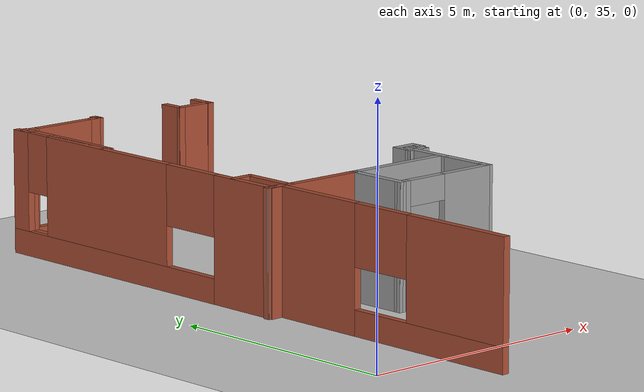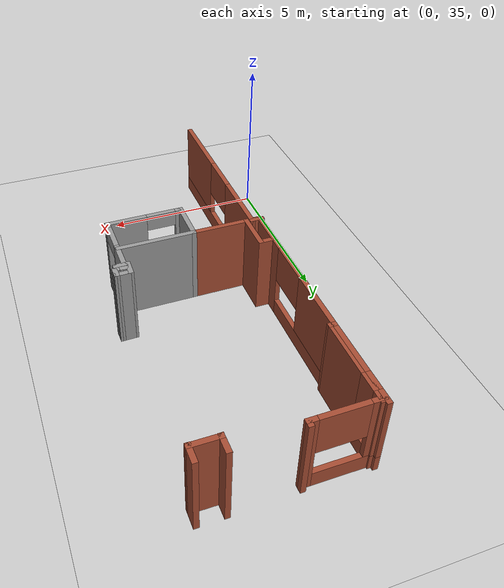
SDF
<sdf version="1.6">
 <world name="default">
  <model name="ground_plane">
   <static>1</static>
   <link name="link">
    <collision name="collision">
     <geometry><plane><normal>0 0 1</normal><size>100 100</size></plane></geometry>
     <surface><friction><ode><mu>100</mu><mu2>50</mu2></ode></friction></surface>
    </collision>
    <visual name="visual">
     <cast_shadows>0</cast_shadows>
     <geometry><plane><normal>0 0 1</normal><size>100 100</size></plane></geometry>
     <material>
      <script><uri>file://media/materials/scripts/gazebo.material</uri><name>Gazebo/Grey</name></script>
     </material>
    </visual>
   </link>
  </model>
  <model name="CVSSP">
   <pose>23.8714 24.094 0 0 -0 0</pose>
   <link name="Wall_353">
    <pose>-19.1292 14.0509 0 0 0 -3.13801</pose>
    <visual name="Wall_353_Visual_0">
     <pose>-0.582227 0 1.25 0 -0 0</pose>
     <geometry><box><size>1.27864 0.15 2.5</size></box></geometry>
     <material>
      <script><uri>file://media/materials/scripts/gazebo.material</uri><name>Gazebo/Grey</name></script>
      <ambient>1 1 1 1</ambient>
     </material>
    </visual>
    <collision name="Wall_353_Collision_0">
     <geometry><box><size>1.27864 0.15 2.5</size></box></geometry>
     <pose>-0.582227 0 1.25 0 -0 0</pose>
    </collision>
    <visual name="Wall_353_Visual_1">
     <pose>1.08932 0 1.25 0 -0 0</pose>
     <geometry><box><size>0.264455 0.15 2.5</size></box></geometry>
     <material>
      <script><uri>file://media/materials/scripts/gazebo.material</uri><name>Gazebo/Grey</name></script>
      <ambient>1 1 1 1</ambient>
     </material>
    </visual>
    <collision name="Wall_353_Collision_1">
     <geometry><box><size>0.264455 0.15 2.5</size></box></geometry>
     <pose>1.08932 0 1.25 0 -0 0</pose>
    </collision>
    <visual name="Wall_353_Visual_2">
     <pose>0.507091 0 2.25 0 -0 0</pose>
     <geometry><box><size>0.9 0.15 0.5</size></box></geometry>
     <material>
      <script><uri>file://media/materials/scripts/gazebo.material</uri><name>Gazebo/Grey</name></script>
      <ambient>1 1 1 1</ambient>
     </material>
    </visual>
    <collision name="Wall_353_Collision_2">
     <geometry><box><size>0.9 0.15 0.5</size></box></geometry>
     <pose>0.507091 0 2.25 0 -0 0</pose>
    </collision>
   </link>
   <link name="Wall_354">
    <collision name="Wall_354_Collision">
     <geometry><box><size>1.39179 0.15 2.5</size></box></geometry>
     <pose>0 0 1.25 0 -0 0</pose>
    </collision>
    <visual name="Wall_354_Visual">
     <pose>0 0 1.25 0 -0 0</pose>
     <geometry><box><size>1.39179 0.15 2.5</size></box></geometry>
     <material>
      <script><uri>file://media/materials/scripts/gazebo.material</uri><name>Gazebo/Grey</name></script>
      <ambient>0.588235 0.588235 0.588235 1</ambient>
     </material>
    </visual>
    <pose>-20.2758 14.6677 0 0 -0 1.5708</pose>
   </link>
   <link name="Wall_355">
    <collision name="Wall_355_Collision">
     <geometry><box><size>2.42378 0.15 2.5</size></box></geometry>
     <pose>0 0 1.25 0 -0 0</pose>
    </collision>
    <visual name="Wall_355_Visual">
     <pose>0 0 1.25 0 -0 0</pose>
     <geometry><box><size>2.42378 0.15 2.5</size></box></geometry>
     <material>
      <script><uri>file://media/materials/scripts/gazebo.material</uri><name>Gazebo/Grey</name></script>
      <ambient>0.588235 0.588235 0.588235 1</ambient>
     </material>
    </visual>
    <pose>-19.1389 15.2885 0 0 -0 0</pose>
   </link>
   <link name="Wall_357">
    <collision name="Wall_357_Collision">
     <geometry><box><size>2.25 0.15 2.5</size></box></geometry>
     <pose>0 0 1.25 0 -0 0</pose>
    </collision>
    <visual name="Wall_357_Visual">
     <pose>0 0 1.25 0 -0 0</pose>
     <geometry><box><size>2.25 0.15 2.5</size></box></geometry>
     <material>
      <script><uri>file://media/materials/scripts/gazebo.material</uri><name>Gazebo/Bricks</name></script>
      <ambient>1 1 1 1</ambient>
     </material>
    </visual>
    <pose>-21.3258 15.2885 0 0 -0 3.14159</pose>
   </link>
   <link name="Wall_358">
    <pose>-22.3758 19.0214 0 0 -0 1.5708</pose>
    <visual name="Wall_358_Visual_0">
     <pose>-2.99416 0 1.25 0 -0 0</pose>
     <geometry><box><size>1.62732 0.15 2.5</size></box></geometry>
     <material>
      <script><uri>file://media/materials/scripts/gazebo.material</uri><name>Gazebo/Bricks</name></script>
      <ambient>1 1 1 1</ambient>
     </material>
    </visual>
    <collision name="Wall_358_Collision_0">
     <geometry><box><size>1.62732 0.15 2.5</size></box></geometry>
     <pose>-2.99416 0 1.25 0 -0 0</pose>
    </collision>
    <visual name="Wall_358_Visual_1">
     <pose>0.813662 0 0.25 0 -0 0</pose>
     <geometry><box><size>5.98833 0.15 0.5</size></box></geometry>
     <material>
      <script><uri>file://media/materials/scripts/gazebo.material</uri><name>Gazebo/Bricks</name></script>
      <ambient>1 1 1 1</ambient>
     </material>
    </visual>
    <collision name="Wall_358_Collision_1">
     <geometry><box><size>5.98833 0.15 0.5</size></box></geometry>
     <pose>0.813662 0 0.25 0 -0 0</pose>
    </collision>
    <visual name="Wall_358_Visual_2">
     <pose>0.981652 0 1.5 0 -0 0</pose>
     <geometry><box><size>3.60157 0.15 2</size></box></geometry>
     <material>
      <script><uri>file://media/materials/scripts/gazebo.material</uri><name>Gazebo/Bricks</name></script>
      <ambient>1 1 1 1</ambient>
     </material>
    </visual>
    <collision name="Wall_358_Collision_2">
     <geometry><box><size>3.60157 0.15 2</size></box></geometry>
     <pose>0.981652 0 1.5 0 -0 0</pose>
    </collision>
    <visual name="Wall_358_Visual_3">
     <pose>3.58521 0 1.5 0 -0 0</pose>
     <geometry><box><size>0.445243 0.15 2</size></box></geometry>
     <material>
      <script><uri>file://media/materials/scripts/gazebo.material</uri><name>Gazebo/Bricks</name></script>
      <ambient>1 1 1 1</ambient>
     </material>
    </visual>
    <collision name="Wall_358_Collision_3">
     <geometry><box><size>0.445243 0.15 2</size></box></geometry>
     <pose>3.58521 0 1.5 0 -0 0</pose>
    </collision>
    <visual name="Wall_358_Visual_4">
     <pose>-1.49982 0 1.9 0 -0 0</pose>
     <geometry><box><size>1.36137 0.15 1.2</size></box></geometry>
     <material>
      <script><uri>file://media/materials/scripts/gazebo.material</uri><name>Gazebo/Bricks</name></script>
      <ambient>1 1 1 1</ambient>
     </material>
    </visual>
    <collision name="Wall_358_Collision_4">
     <geometry><box><size>1.36137 0.15 1.2</size></box></geometry>
     <pose>-1.49982 0 1.9 0 -0 0</pose>
    </collision>
    <visual name="Wall_358_Visual_5">
     <pose>3.07251 0 1.9 0 -0 0</pose>
     <geometry><box><size>0.580147 0.15 1.2</size></box></geometry>
     <material>
      <script><uri>file://media/materials/scripts/gazebo.material</uri><name>Gazebo/Bricks</name></script>
      <ambient>1 1 1 1</ambient>
     </material>
    </visual>
    <collision name="Wall_358_Collision_5">
     <geometry><box><size>0.580147 0.15 1.2</size></box></geometry>
     <pose>3.07251 0 1.9 0 -0 0</pose>
    </collision>
   </link>
   <link name="Wall_369">
    <collision name="Wall_369_Collision">
     <geometry><box><size>0.55293 0.15 2.5</size></box></geometry>
     <pose>0 0 1.25 0 -0 0</pose>
    </collision>
    <visual name="Wall_369_Visual">
     <pose>0 0 1.25 0 -0 0</pose>
     <geometry><box><size>0.55293 0.15 2.5</size></box></geometry>
     <material>
      <script><uri>file://media/materials/scripts/gazebo.material</uri><name>Gazebo/Bricks</name></script>
      <ambient>1 1 1 1</ambient>
     </material>
    </visual>
    <pose>-18.4961 22.5535 0 0 0 -1.5708</pose>
   </link>
   <link name="Wall_370">
    <collision name="Wall_370_Collision">
     <geometry><box><size>0.913815 0.15 2.5</size></box></geometry>
     <pose>0 0 1.25 0 -0 0</pose>
    </collision>
    <visual name="Wall_370_Visual">
     <pose>0 0 1.25 0 -0 0</pose>
     <geometry><box><size>0.913815 0.15 2.5</size></box></geometry>
     <material>
      <script><uri>file://media/materials/scripts/gazebo.material</uri><name>Gazebo/Bricks</name></script>
      <ambient>1 1 1 1</ambient>
     </material>
    </visual>
    <pose>-18.1142 22.3569 0 0 0 -0.007054</pose>
   </link>
   <link name="Wall_371">
    <collision name="Wall_371_Collision">
     <geometry><box><size>0.55293 0.15 2.5</size></box></geometry>
     <pose>0 0 1.25 0 -0 0</pose>
    </collision>
    <visual name="Wall_371_Visual">
     <pose>0 0 1.25 0 -0 0</pose>
     <geometry><box><size>0.55293 0.15 2.5</size></box></geometry>
     <material>
      <script><uri>file://media/materials/scripts/gazebo.material</uri><name>Gazebo/Bricks</name></script>
      <ambient>1 1 1 1</ambient>
     </material>
    </visual>
    <pose>-17.7324 22.5482 0 0 -0 1.5708</pose>
   </link>
   <link name="Wall_374">
    <collision name="Wall_374_Collision">
     <geometry><box><size>0.25 0.15 2.5</size></box></geometry>
     <pose>0 0 1.25 0 -0 0</pose>
    </collision>
    <visual name="Wall_374_Visual">
     <pose>0 0 1.25 0 -0 0</pose>
     <geometry><box><size>0.25 0.15 2.5</size></box></geometry>
     <material>
      <script><uri>file://media/materials/scripts/gazebo.material</uri><name>Gazebo/Bricks</name></script>
      <ambient>1 1 1 1</ambient>
     </material>
    </visual>
    <pose>-20.4318 22.6823 0 0 0 -1.5708</pose>
   </link>
   <link name="Wall_375">
    <pose>-21.3845 22.6294 0 0 0 -3.13852</pose>
    <visual name="Wall_375_Visual_0">
     <pose>-0.871492 0 1.25 0 -0 0</pose>
     <geometry><box><size>0.312508 0.15 2.5</size></box></geometry>
     <material>
      <script><uri>file://media/materials/scripts/gazebo.material</uri><name>Gazebo/Bricks</name></script>
      <ambient>1 1 1 1</ambient>
     </material>
    </visual>
    <collision name="Wall_375_Collision_0">
     <geometry><box><size>0.312508 0.15 2.5</size></box></geometry>
     <pose>-0.871492 0 1.25 0 -0 0</pose>
    </collision>
    <visual name="Wall_375_Visual_1">
     <pose>0.156254 0 0.25 0 -0 0</pose>
     <geometry><box><size>1.74298 0.15 0.5</size></box></geometry>
     <material>
      <script><uri>file://media/materials/scripts/gazebo.material</uri><name>Gazebo/Bricks</name></script>
      <ambient>1 1 1 1</ambient>
     </material>
    </visual>
    <collision name="Wall_375_Collision_1">
     <geometry><box><size>1.74298 0.15 0.5</size></box></geometry>
     <pose>0.156254 0 0.25 0 -0 0</pose>
    </collision>
    <visual name="Wall_375_Visual_2">
     <pose>0.835704 0 1.5 0 -0 0</pose>
     <geometry><box><size>0.384083 0.15 2</size></box></geometry>
     <material>
      <script><uri>file://media/materials/scripts/gazebo.material</uri><name>Gazebo/Bricks</name></script>
      <ambient>1 1 1 1</ambient>
     </material>
    </visual>
    <collision name="Wall_375_Collision_2">
     <geometry><box><size>0.384083 0.15 2</size></box></geometry>
     <pose>0.835704 0 1.5 0 -0 0</pose>
    </collision>
    <visual name="Wall_375_Visual_3">
     <pose>-0.035788 0 1.9 0 -0 0</pose>
     <geometry><box><size>1.3589 0.15 1.2</size></box></geometry>
     <material>
      <script><uri>file://media/materials/scripts/gazebo.material</uri><name>Gazebo/Bricks</name></script>
      <ambient>1 1 1 1</ambient>
     </material>
    </visual>
    <collision name="Wall_375_Collision_3">
     <geometry><box><size>1.3589 0.15 1.2</size></box></geometry>
     <pose>-0.035788 0 1.9 0 -0 0</pose>
    </collision>
   </link>
   <link name="Wall_377">
    <collision name="Wall_377_Collision">
     <geometry><box><size>0.25 0.15 2.5</size></box></geometry>
     <pose>0 0 1.25 0 -0 0</pose>
    </collision>
    <visual name="Wall_377_Visual">
     <pose>0 0 1.25 0 -0 0</pose>
     <geometry><box><size>0.25 0.15 2.5</size></box></geometry>
     <material>
      <script><uri>file://media/materials/scripts/gazebo.material</uri><name>Gazebo/Bricks</name></script>
      <ambient>1 1 1 1</ambient>
     </material>
    </visual>
    <pose>-22.3251 20.1236 0 0 -0 0</pose>
   </link>
   <link name="Wall_378">
    <pose>-22.2722 21.3977 0 0 -0 1.5685</pose>
    <visual name="Wall_378_Visual_0">
     <pose>-0.473393 0 1.25 0 -0 0</pose>
     <geometry><box><size>1.75143 0.15 2.5</size></box></geometry>
     <material>
      <script><uri>file://media/materials/scripts/gazebo.material</uri><name>Gazebo/Bricks</name></script>
      <ambient>1 1 1 1</ambient>
     </material>
    </visual>
    <collision name="Wall_378_Collision_0">
     <geometry><box><size>1.75143 0.15 2.5</size></box></geometry>
     <pose>-0.473393 0 1.25 0 -0 0</pose>
    </collision>
    <visual name="Wall_378_Visual_1">
     <pose>0.875712 0 0.25 0 -0 0</pose>
     <geometry><box><size>0.946786 0.15 0.5</size></box></geometry>
     <material>
      <script><uri>file://media/materials/scripts/gazebo.material</uri><name>Gazebo/Bricks</name></script>
      <ambient>1 1 1 1</ambient>
     </material>
    </visual>
    <collision name="Wall_378_Collision_1">
     <geometry><box><size>0.946786 0.15 0.5</size></box></geometry>
     <pose>0.875712 0 0.25 0 -0 0</pose>
    </collision>
    <visual name="Wall_378_Visual_2">
     <pose>1.16768 0 1.5 0 -0 0</pose>
     <geometry><box><size>0.362852 0.15 2</size></box></geometry>
     <material>
      <script><uri>file://media/materials/scripts/gazebo.material</uri><name>Gazebo/Bricks</name></script>
      <ambient>1 1 1 1</ambient>
     </material>
    </visual>
    <collision name="Wall_378_Collision_2">
     <geometry><box><size>0.362852 0.15 2</size></box></geometry>
     <pose>1.16768 0 1.5 0 -0 0</pose>
    </collision>
    <visual name="Wall_378_Visual_3">
     <pose>0.694286 0 1.9 0 -0 0</pose>
     <geometry><box><size>0.583934 0.15 1.2</size></box></geometry>
     <material>
      <script><uri>file://media/materials/scripts/gazebo.material</uri><name>Gazebo/Bricks</name></script>
      <ambient>1 1 1 1</ambient>
     </material>
    </visual>
    <collision name="Wall_378_Collision_3">
     <geometry><box><size>0.583934 0.15 1.2</size></box></geometry>
     <pose>0.694286 0 1.9 0 -0 0</pose>
    </collision>
   </link>
   <link name="Wall_380">
    <collision name="Wall_380_Collision">
     <geometry><box><size>0.550756 0.15 2.5</size></box></geometry>
     <pose>0 0 1.25 0 -0 0</pose>
    </collision>
    <visual name="Wall_380_Visual">
     <pose>0 0 1.25 0 -0 0</pose>
     <geometry><box><size>0.550756 0.15 2.5</size></box></geometry>
     <material>
      <script><uri>file://media/materials/scripts/gazebo.material</uri><name>Gazebo/Bricks</name></script>
      <ambient>1 1 1 1</ambient>
     </material>
    </visual>
    <pose>-22.152 16.3732 0 0 -0 0</pose>
   </link>
   <link name="Wall_381">
    <collision name="Wall_381_Collision">
     <geometry><box><size>1.23131 0.15 2.5</size></box></geometry>
     <pose>0 0 1.25 0 -0 0</pose>
    </collision>
    <visual name="Wall_381_Visual">
     <pose>0 0 1.25 0 -0 0</pose>
     <geometry><box><size>1.23131 0.15 2.5</size></box></geometry>
     <material>
      <script><uri>file://media/materials/scripts/gazebo.material</uri><name>Gazebo/Bricks</name></script>
      <ambient>1 1 1 1</ambient>
     </material>
    </visual>
    <pose>-21.9516 15.8325 0 0 0 -1.5708</pose>
   </link>
   <link name="Wall_392">
    <collision name="Wall_392_Collision">
     <geometry><box><size>0.15 0.15 2.5</size></box></geometry>
     <pose>0 0 1.25 0 -0 0</pose>
    </collision>
    <visual name="Wall_392_Visual">
     <pose>0 0 1.25 0 -0 0</pose>
     <geometry><box><size>0.15 0.15 2.5</size></box></geometry>
     <material>
      <script><uri>file://media/materials/scripts/gazebo.material</uri><name>Gazebo/Grey</name></script>
      <ambient>1 1 1 1</ambient>
     </material>
    </visual>
    <pose>-22.4329 15.3167 0 0 -0 0</pose>
   </link>
   <link name="Wall_394">
    <collision name="Wall_394_Collision">
     <geometry><box><size>0.459201 0.15 2.5</size></box></geometry>
     <pose>0 0 1.25 0 -0 0</pose>
    </collision>
    <visual name="Wall_394_Visual">
     <pose>0 0 1.25 0 -0 0</pose>
     <geometry><box><size>0.459201 0.15 2.5</size></box></geometry>
     <material>
      <script><uri>file://media/materials/scripts/gazebo.material</uri><name>Gazebo/Bricks</name></script>
      <ambient>1 1 1 1</ambient>
     </material>
    </visual>
    <pose>-22.2785 15.3176 0 0 -0 0.005531</pose>
   </link>
   <link name="Wall_395">
    <pose>-22.124 12.4222 0 0 0 -1.5708</pose>
    <visual name="Wall_395_Visual_0">
     <pose>-1.90113 0 1.25 0 -0 0</pose>
     <geometry><box><size>2.1403 0.15 2.5</size></box></geometry>
     <material>
      <script><uri>file://media/materials/scripts/gazebo.material</uri><name>Gazebo/Bricks</name></script>
      <ambient>1 1 1 1</ambient>
     </material>
    </visual>
    <collision name="Wall_395_Collision_0">
     <geometry><box><size>2.1403 0.15 2.5</size></box></geometry>
     <pose>-1.90113 0 1.25 0 -0 0</pose>
    </collision>
    <visual name="Wall_395_Visual_1">
     <pose>1.07015 0 0.25 0 -0 0</pose>
     <geometry><box><size>3.80226 0.15 0.5</size></box></geometry>
     <material>
      <script><uri>file://media/materials/scripts/gazebo.material</uri><name>Gazebo/Bricks</name></script>
      <ambient>1 1 1 1</ambient>
     </material>
    </visual>
    <collision name="Wall_395_Collision_1">
     <geometry><box><size>3.80226 0.15 0.5</size></box></geometry>
     <pose>1.07015 0 0.25 0 -0 0</pose>
    </collision>
    <visual name="Wall_395_Visual_2">
     <pose>1.74597 0 1.5 0 -0 0</pose>
     <geometry><box><size>2.45063 0.15 2</size></box></geometry>
     <material>
      <script><uri>file://media/materials/scripts/gazebo.material</uri><name>Gazebo/Bricks</name></script>
      <ambient>1 1 1 1</ambient>
     </material>
    </visual>
    <collision name="Wall_395_Collision_2">
     <geometry><box><size>2.45063 0.15 2</size></box></geometry>
     <pose>1.74597 0 1.5 0 -0 0</pose>
    </collision>
    <visual name="Wall_395_Visual_3">
     <pose>-0.155166 0 1.9 0 -0 0</pose>
     <geometry><box><size>1.35163 0.15 1.2</size></box></geometry>
     <material>
      <script><uri>file://media/materials/scripts/gazebo.material</uri><name>Gazebo/Bricks</name></script>
      <ambient>1 1 1 1</ambient>
     </material>
    </visual>
    <collision name="Wall_395_Collision_3">
     <geometry><box><size>1.35163 0.15 1.2</size></box></geometry>
     <pose>-0.155166 0 1.9 0 -0 0</pose>
    </collision>
   </link>
   <link name="Wall_643">
    <collision name="Wall_643_Collision">
     <geometry><box><size>0.542409 0.15 2.5</size></box></geometry>
     <pose>0 0 1.25 0 -0 0</pose>
    </collision>
    <visual name="Wall_643_Visual">
     <pose>0 0 1.25 0 -0 0</pose>
     <geometry><box><size>0.542409 0.15 2.5</size></box></geometry>
     <material>
      <script><uri>file://media/materials/scripts/gazebo.material</uri><name>Gazebo/Grey</name></script>
      <ambient>1 1 1 1</ambient>
     </material>
    </visual>
    <pose>-17.8681 16.3987 0 0 -0 0.016948</pose>
   </link>
   <link name="Wall_644">
    <collision name="Wall_644_Collision">
     <geometry><box><size>0.362905 0.15 2.5</size></box></geometry>
     <pose>0 0 1.25 0 -0 0</pose>
    </collision>
    <visual name="Wall_644_Visual">
     <pose>0 0 1.25 0 -0 0</pose>
     <geometry><box><size>0.362905 0.15 2.5</size></box></geometry>
     <material>
      <script><uri>file://media/materials/scripts/gazebo.material</uri><name>Gazebo/Grey</name></script>
      <ambient>1 1 1 1</ambient>
     </material>
    </visual>
    <pose>-17.6719 16.2956 0 0 0 -1.5708</pose>
   </link>
   <link name="Wall_645">
    <collision name="Wall_645_Collision">
     <geometry><box><size>0.210219 0.15 2.5</size></box></geometry>
     <pose>0 0 1.25 0 -0 0</pose>
    </collision>
    <visual name="Wall_645_Visual">
     <pose>0 0 1.25 0 -0 0</pose>
     <geometry><box><size>0.210219 0.15 2.5</size></box></geometry>
     <material>
      <script><uri>file://media/materials/scripts/gazebo.material</uri><name>Gazebo/Grey</name></script>
      <ambient>1 1 1 1</ambient>
     </material>
    </visual>
    <pose>-17.7019 16.1859 0 0 0 -3.03093</pose>
   </link>
   <link name="Wall_646">
    <collision name="Wall_646_Collision">
     <geometry><box><size>0.296301 0.15 2.5</size></box></geometry>
     <pose>0 0 1.25 0 -0 0</pose>
    </collision>
    <visual name="Wall_646_Visual">
     <pose>0 0 1.25 0 -0 0</pose>
     <geometry><box><size>0.296301 0.15 2.5</size></box></geometry>
     <material>
      <script><uri>file://media/materials/scripts/gazebo.material</uri><name>Gazebo/Grey</name></script>
      <ambient>1 1 1 1</ambient>
     </material>
    </visual>
    <pose>-17.7318 16.1161 0 0 0 -1.5708</pose>
   </link>
   <link name="Wall_647">
    <collision name="Wall_647_Collision">
     <geometry><box><size>0.5 0.15 2.5</size></box></geometry>
     <pose>0 0 1.25 0 -0 0</pose>
    </collision>
    <visual name="Wall_647_Visual">
     <pose>0 0 1.25 0 -0 0</pose>
     <geometry><box><size>0.5 0.15 2.5</size></box></geometry>
     <material>
      <script><uri>file://media/materials/scripts/gazebo.material</uri><name>Gazebo/Grey</name></script>
      <ambient>1 1 1 1</ambient>
     </material>
    </visual>
    <pose>-17.9068 16.0363 0 0 -0 3.14159</pose>
   </link>
   <link name="Wall_648">
    <collision name="Wall_648_Collision">
     <geometry><box><size>0.509266 0.15 2.5</size></box></geometry>
     <pose>0 0 1.25 0 -0 0</pose>
    </collision>
    <visual name="Wall_648_Visual">
     <pose>0 0 1.25 0 -0 0</pose>
     <geometry><box><size>0.509266 0.15 2.5</size></box></geometry>
     <material>
      <script><uri>file://media/materials/scripts/gazebo.material</uri><name>Gazebo/Grey</name></script>
      <ambient>1 1 1 1</ambient>
     </material>
    </visual>
    <pose>-18.0764 16.2158 0 0 -0 1.5406</pose>
   </link>
   <link name="Wall_71">
    <collision name="Wall_71_Collision">
     <geometry><box><size>0.253869 0.15 2.5</size></box></geometry>
     <pose>0 0 1.25 0 -0 0</pose>
    </collision>
    <visual name="Wall_71_Visual">
     <pose>0 0 1.25 0 -0 0</pose>
     <geometry><box><size>0.253869 0.15 2.5</size></box></geometry>
     <material>
      <script><uri>file://media/materials/scripts/gazebo.material</uri><name>Gazebo/Grey</name></script>
      <ambient>1 1 1 1</ambient>
     </material>
    </visual>
    <pose>-17.931 16.1912 0 0 -0 3.06873</pose>
   </link>
   <link name="Wall_72">
    <pose>-17.9828 15.125 0 0 0 -1.57074</pose>
    <visual name="Wall_72_Visual_0">
     <pose>-0.575826 0 1.25 0 -0 0</pose>
     <geometry><box><size>1.13835 0.15 2.5</size></box></geometry>
     <material>
      <script><uri>file://media/materials/scripts/gazebo.material</uri><name>Gazebo/Grey</name></script>
      <ambient>0.588235 0.588235 0.588235 1</ambient>
     </material>
    </visual>
    <collision name="Wall_72_Collision_0">
     <geometry><box><size>1.13835 0.15 2.5</size></box></geometry>
     <pose>-0.575826 0 1.25 0 -0 0</pose>
    </collision>
    <visual name="Wall_72_Visual_1">
     <pose>1.01917 0 1.25 0 -0 0</pose>
     <geometry><box><size>0.251651 0.15 2.5</size></box></geometry>
     <material>
      <script><uri>file://media/materials/scripts/gazebo.material</uri><name>Gazebo/Grey</name></script>
      <ambient>0.588235 0.588235 0.588235 1</ambient>
     </material>
    </visual>
    <collision name="Wall_72_Collision_1">
     <geometry><box><size>0.251651 0.15 2.5</size></box></geometry>
     <pose>1.01917 0 1.25 0 -0 0</pose>
    </collision>
    <visual name="Wall_72_Visual_2">
     <pose>0.443349 0 2.25 0 -0 0</pose>
     <geometry><box><size>0.9 0.15 0.5</size></box></geometry>
     <material>
      <script><uri>file://media/materials/scripts/gazebo.material</uri><name>Gazebo/Grey</name></script>
      <ambient>0.588235 0.588235 0.588235 1</ambient>
     </material>
    </visual>
    <collision name="Wall_72_Collision_2">
     <geometry><box><size>0.9 0.15 0.5</size></box></geometry>
     <pose>0.443349 0 2.25 0 -0 0</pose>
    </collision>
   </link>
   <static>1</static>
  </model>
 </world>
</sdf>
